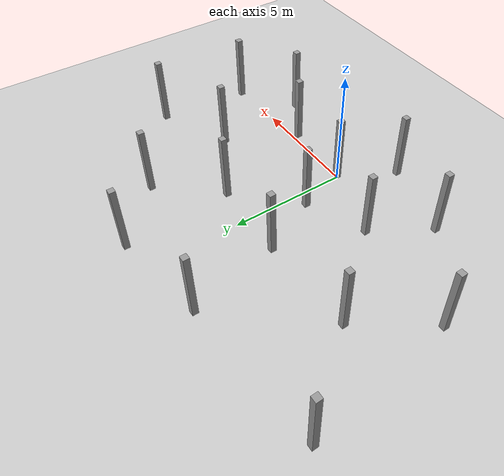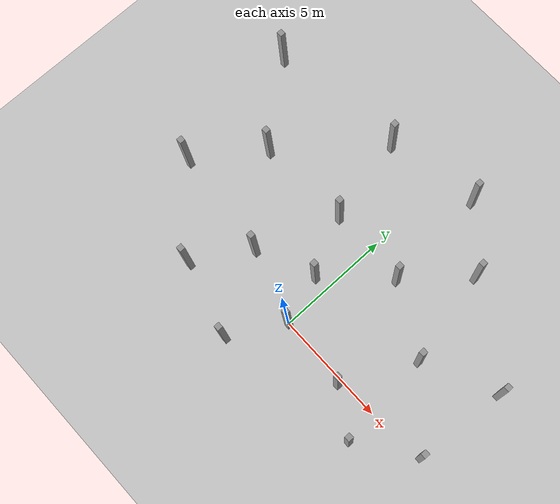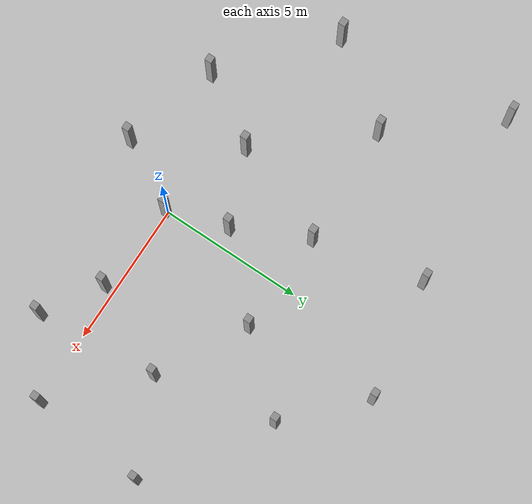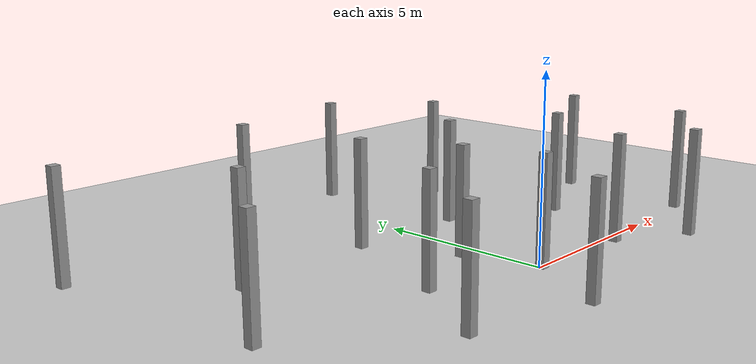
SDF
<sdf version="1.6">
 <world name="default">
  <model name="ground_plane">
   <static>1</static>
   <link name="link">
    <collision name="collision">
     <geometry><plane><normal>0 0 1</normal><size>100 100</size></plane></geometry>
     <surface><friction><ode><mu>100</mu><mu2>50</mu2></ode></friction></surface>
    </collision>
    <visual name="visual">
     <cast_shadows>0</cast_shadows>
     <geometry><plane><normal>0 0 1</normal><size>100 100</size></plane></geometry>
     <material>
      <script><uri>file://media/materials/scripts/gazebo.material</uri><name>Gazebo/Grey</name></script>
     </material>
    </visual>
   </link>
  </model>
  <model name="box_2">
   <link name="link">
    <pose>0 0 1 0 -0 0</pose>
    <inertial>
     <mass>1</mass>
     <inertia><ixx>5.16667</ixx><ixy>0</ixy><ixz>0</ixz><iyy>5.16667</iyy><iyz>0</iyz><izz>5.16667</izz></inertia>
     <pose>0 0 1 0 -0 0</pose>
    </inertial>
    <visual name="ModelPreview_4::link::visual_1">
     <geometry><box><size>0.25 0.25 3</size></box></geometry>
     <material>
      <script><name>Gazebo/Grey</name><uri>file://media/materials/scripts/gazebo.material</uri></script>
      <ambient>0.3 0.3 0.3 1</ambient>
      <diffuse>0.7 0.7 0.7 1</diffuse>
      <specular>0.01 0.01 0.01 1</specular>
      <emissive>0 0 0 1</emissive>
      <shader type="vertex"><normal_map>__default__</normal_map></shader>
     </material>
    </visual>
    <visual name="visual">
     <geometry><box><size>0.25 0.25 3</size></box></geometry>
     <material>
      <script><name>Gazebo/Grey</name><uri>file://media/materials/scripts/gazebo.material</uri></script>
      <ambient>0.3 0.3 0.3 1</ambient>
      <diffuse>0.7 0.7 0.7 1</diffuse>
      <specular>0.01 0.01 0.01 1</specular>
      <emissive>0 0 0 1</emissive>
      <shader type="vertex"><normal_map>__default__</normal_map></shader>
     </material>
    </visual>
    <collision name="collision">
     <geometry><box><size>0.25 0.25 3</size></box></geometry>
     <surface>
      <friction>
       <ode><mu>1</mu><mu2>1</mu2><fdir1>0 0 0</fdir1><slip1>0</slip1><slip2>0</slip2></ode>
       <torsional>
        <coefficient>1</coefficient>
        <patch_radius>0</patch_radius>
        <surface_radius>0</surface_radius>
        <use_patch_radius>1</use_patch_radius>
        <ode><slip>0</slip></ode>
       </torsional>
      </friction>
      <bounce><restitution_coefficient>0</restitution_coefficient><threshold>1e+06</threshold></bounce>
      <contact>
       <collide_without_contact>0</collide_without_contact>
       <collide_without_contact_bitmask>1</collide_without_contact_bitmask>
       <collide_bitmask>1</collide_bitmask>
       <ode>
        <soft_cfm>0</soft_cfm>
        <soft_erp>0.2</soft_erp>
        <kp>1e+13</kp>
        <kd>1</kd>
        <max_vel>0.01</max_vel>
        <min_depth>0</min_depth>
       </ode>
       <bullet>
        <split_impulse>1</split_impulse>
        <split_impulse_penetration_threshold>-0.01</split_impulse_penetration_threshold>
        <soft_cfm>0</soft_cfm>
        <soft_erp>0.2</soft_erp>
        <kp>1e+13</kp>
        <kd>1</kd>
       </bullet>
      </contact>
     </surface>
    </collision>
   </link>
   <static>0</static>
   <pose>0.066026 -0.031786 0.49999 0 -1e-06 -0.000159</pose>
  </model>
  <model name="box_2_5">
   <link name="link">
    <pose>0 0 1 0 -0 0</pose>
    <inertial>
     <mass>1</mass>
     <inertia><ixx>5.16667</ixx><ixy>0</ixy><ixz>0</ixz><iyy>5.16667</iyy><iyz>0</iyz><izz>5.16667</izz></inertia>
     <pose>0 0 1 0 -0 0</pose>
    </inertial>
    <visual name="ModelPreview_4::link::visual_1">
     <geometry><box><size>0.25 0.25 3</size></box></geometry>
     <material>
      <script><name>Gazebo/Grey</name><uri>file://media/materials/scripts/gazebo.material</uri></script>
      <ambient>0.3 0.3 0.3 1</ambient>
      <diffuse>0.7 0.7 0.7 1</diffuse>
      <specular>0.01 0.01 0.01 1</specular>
      <emissive>0 0 0 1</emissive>
      <shader type="vertex"><normal_map>__default__</normal_map></shader>
     </material>
    </visual>
    <visual name="visual">
     <geometry><box><size>0.25 0.25 3</size></box></geometry>
     <material>
      <script><name>Gazebo/Grey</name><uri>file://media/materials/scripts/gazebo.material</uri></script>
      <ambient>0.3 0.3 0.3 1</ambient>
      <diffuse>0.7 0.7 0.7 1</diffuse>
      <specular>0.01 0.01 0.01 1</specular>
      <emissive>0 0 0 1</emissive>
      <shader type="vertex"><normal_map>__default__</normal_map></shader>
     </material>
    </visual>
    <collision name="collision">
     <geometry><box><size>0.25 0.25 3</size></box></geometry>
     <surface>
      <friction>
       <ode><mu>1</mu><mu2>1</mu2><fdir1>0 0 0</fdir1><slip1>0</slip1><slip2>0</slip2></ode>
       <torsional>
        <coefficient>1</coefficient>
        <patch_radius>0</patch_radius>
        <surface_radius>0</surface_radius>
        <use_patch_radius>1</use_patch_radius>
        <ode><slip>0</slip></ode>
       </torsional>
      </friction>
      <bounce><restitution_coefficient>0</restitution_coefficient><threshold>1e+06</threshold></bounce>
      <contact>
       <collide_without_contact>0</collide_without_contact>
       <collide_without_contact_bitmask>1</collide_without_contact_bitmask>
       <collide_bitmask>1</collide_bitmask>
       <ode>
        <soft_cfm>0</soft_cfm>
        <soft_erp>0.2</soft_erp>
        <kp>1e+13</kp>
        <kd>1</kd>
        <max_vel>0.01</max_vel>
        <min_depth>0</min_depth>
       </ode>
       <bullet>
        <split_impulse>1</split_impulse>
        <split_impulse_penetration_threshold>-0.01</split_impulse_penetration_threshold>
        <soft_cfm>0</soft_cfm>
        <soft_erp>0.2</soft_erp>
        <kp>1e+13</kp>
        <kd>1</kd>
       </bullet>
      </contact>
     </surface>
    </collision>
   </link>
   <static>0</static>
   <pose>7.55225 0.161645 0.5 0 0 -9.9e-05</pose>
  </model>
  <model name="box_2_7">
   <link name="link">
    <pose>0 0 1 0 -0 0</pose>
    <inertial>
     <mass>1</mass>
     <inertia><ixx>5.16667</ixx><ixy>0</ixy><ixz>0</ixz><iyy>5.16667</iyy><iyz>0</iyz><izz>5.16667</izz></inertia>
     <pose>0 0 1 0 -0 0</pose>
    </inertial>
    <visual name="ModelPreview_4::link::visual_1">
     <geometry><box><size>0.25 0.25 3</size></box></geometry>
     <material>
      <script><name>Gazebo/Grey</name><uri>file://media/materials/scripts/gazebo.material</uri></script>
      <ambient>0.3 0.3 0.3 1</ambient>
      <diffuse>0.7 0.7 0.7 1</diffuse>
      <specular>0.01 0.01 0.01 1</specular>
      <emissive>0 0 0 1</emissive>
      <shader type="vertex"><normal_map>__default__</normal_map></shader>
     </material>
    </visual>
    <visual name="visual">
     <geometry><box><size>0.25 0.25 3</size></box></geometry>
     <material>
      <script><name>Gazebo/Grey</name><uri>file://media/materials/scripts/gazebo.material</uri></script>
      <ambient>0.3 0.3 0.3 1</ambient>
      <diffuse>0.7 0.7 0.7 1</diffuse>
      <specular>0.01 0.01 0.01 1</specular>
      <emissive>0 0 0 1</emissive>
      <shader type="vertex"><normal_map>__default__</normal_map></shader>
     </material>
    </visual>
    <collision name="collision">
     <geometry><box><size>0.25 0.25 3</size></box></geometry>
     <surface>
      <friction>
       <ode><mu>1</mu><mu2>1</mu2><fdir1>0 0 0</fdir1><slip1>0</slip1><slip2>0</slip2></ode>
       <torsional>
        <coefficient>1</coefficient>
        <patch_radius>0</patch_radius>
        <surface_radius>0</surface_radius>
        <use_patch_radius>1</use_patch_radius>
        <ode><slip>0</slip></ode>
       </torsional>
      </friction>
      <bounce><restitution_coefficient>0</restitution_coefficient><threshold>1e+06</threshold></bounce>
      <contact>
       <collide_without_contact>0</collide_without_contact>
       <collide_without_contact_bitmask>1</collide_without_contact_bitmask>
       <collide_bitmask>1</collide_bitmask>
       <ode>
        <soft_cfm>0</soft_cfm>
        <soft_erp>0.2</soft_erp>
        <kp>1e+13</kp>
        <kd>1</kd>
        <max_vel>0.01</max_vel>
        <min_depth>0</min_depth>
       </ode>
       <bullet>
        <split_impulse>1</split_impulse>
        <split_impulse_penetration_threshold>-0.01</split_impulse_penetration_threshold>
        <soft_cfm>0</soft_cfm>
        <soft_erp>0.2</soft_erp>
        <kp>1e+13</kp>
        <kd>1</kd>
       </bullet>
      </contact>
     </surface>
    </collision>
   </link>
   <static>0</static>
   <pose>-1.22637 -2.30478 0.500002 -1.7e-05 1e-06 -0.000177</pose>
  </model>
  <model name="box_2_12">
   <link name="link">
    <pose>0 0 1 0 -0 0</pose>
    <inertial>
     <mass>1</mass>
     <inertia><ixx>5.16667</ixx><ixy>0</ixy><ixz>0</ixz><iyy>5.16667</iyy><iyz>0</iyz><izz>5.16667</izz></inertia>
     <pose>0 0 1 0 -0 0</pose>
    </inertial>
    <visual name="ModelPreview_4::link::visual_1">
     <geometry><box><size>0.25 0.25 3</size></box></geometry>
     <material>
      <script><name>Gazebo/Grey</name><uri>file://media/materials/scripts/gazebo.material</uri></script>
      <ambient>0.3 0.3 0.3 1</ambient>
      <diffuse>0.7 0.7 0.7 1</diffuse>
      <specular>0.01 0.01 0.01 1</specular>
      <emissive>0 0 0 1</emissive>
      <shader type="vertex"><normal_map>__default__</normal_map></shader>
     </material>
    </visual>
    <visual name="visual">
     <geometry><box><size>0.25 0.25 3</size></box></geometry>
     <material>
      <script><name>Gazebo/Grey</name><uri>file://media/materials/scripts/gazebo.material</uri></script>
      <ambient>0.3 0.3 0.3 1</ambient>
      <diffuse>0.7 0.7 0.7 1</diffuse>
      <specular>0.01 0.01 0.01 1</specular>
      <emissive>0 0 0 1</emissive>
      <shader type="vertex"><normal_map>__default__</normal_map></shader>
     </material>
    </visual>
    <collision name="collision">
     <geometry><box><size>0.25 0.25 3</size></box></geometry>
     <surface>
      <friction>
       <ode><mu>1</mu><mu2>1</mu2><fdir1>0 0 0</fdir1><slip1>0</slip1><slip2>0</slip2></ode>
       <torsional>
        <coefficient>1</coefficient>
        <patch_radius>0</patch_radius>
        <surface_radius>0</surface_radius>
        <use_patch_radius>1</use_patch_radius>
        <ode><slip>0</slip></ode>
       </torsional>
      </friction>
      <bounce><restitution_coefficient>0</restitution_coefficient><threshold>1e+06</threshold></bounce>
      <contact>
       <collide_without_contact>0</collide_without_contact>
       <collide_without_contact_bitmask>1</collide_without_contact_bitmask>
       <collide_bitmask>1</collide_bitmask>
       <ode>
        <soft_cfm>0</soft_cfm>
        <soft_erp>0.2</soft_erp>
        <kp>1e+13</kp>
        <kd>1</kd>
        <max_vel>0.01</max_vel>
        <min_depth>0</min_depth>
       </ode>
       <bullet>
        <split_impulse>1</split_impulse>
        <split_impulse_penetration_threshold>-0.01</split_impulse_penetration_threshold>
        <soft_cfm>0</soft_cfm>
        <soft_erp>0.2</soft_erp>
        <kp>1e+13</kp>
        <kd>1</kd>
       </bullet>
      </contact>
     </surface>
    </collision>
   </link>
   <static>0</static>
   <pose>-4.56221 -1.34442 0.500001 -1e-06 -5e-06 -0.000141</pose>
  </model>
  <model name="box_2_14">
   <link name="link">
    <pose>0 0 1 0 -0 0</pose>
    <inertial>
     <mass>1</mass>
     <inertia><ixx>5.16667</ixx><ixy>0</ixy><ixz>0</ixz><iyy>5.16667</iyy><iyz>0</iyz><izz>5.16667</izz></inertia>
     <pose>0 0 1 0 -0 0</pose>
    </inertial>
    <visual name="ModelPreview_4::link::visual_1">
     <geometry><box><size>0.25 0.25 3</size></box></geometry>
     <material>
      <script><name>Gazebo/Grey</name><uri>file://media/materials/scripts/gazebo.material</uri></script>
      <ambient>0.3 0.3 0.3 1</ambient>
      <diffuse>0.7 0.7 0.7 1</diffuse>
      <specular>0.01 0.01 0.01 1</specular>
      <emissive>0 0 0 1</emissive>
      <shader type="vertex"><normal_map>__default__</normal_map></shader>
     </material>
    </visual>
    <visual name="visual">
     <geometry><box><size>0.25 0.25 3</size></box></geometry>
     <material>
      <script><name>Gazebo/Grey</name><uri>file://media/materials/scripts/gazebo.material</uri></script>
      <ambient>0.3 0.3 0.3 1</ambient>
      <diffuse>0.7 0.7 0.7 1</diffuse>
      <specular>0.01 0.01 0.01 1</specular>
      <emissive>0 0 0 1</emissive>
      <shader type="vertex"><normal_map>__default__</normal_map></shader>
     </material>
    </visual>
    <collision name="collision">
     <geometry><box><size>0.25 0.25 3</size></box></geometry>
     <surface>
      <friction>
       <ode><mu>1</mu><mu2>1</mu2><fdir1>0 0 0</fdir1><slip1>0</slip1><slip2>0</slip2></ode>
       <torsional>
        <coefficient>1</coefficient>
        <patch_radius>0</patch_radius>
        <surface_radius>0</surface_radius>
        <use_patch_radius>1</use_patch_radius>
        <ode><slip>0</slip></ode>
       </torsional>
      </friction>
      <bounce><restitution_coefficient>0</restitution_coefficient><threshold>1e+06</threshold></bounce>
      <contact>
       <collide_without_contact>0</collide_without_contact>
       <collide_without_contact_bitmask>1</collide_without_contact_bitmask>
       <collide_bitmask>1</collide_bitmask>
       <ode>
        <soft_cfm>0</soft_cfm>
        <soft_erp>0.2</soft_erp>
        <kp>1e+13</kp>
        <kd>1</kd>
        <max_vel>0.01</max_vel>
        <min_depth>0</min_depth>
       </ode>
       <bullet>
        <split_impulse>1</split_impulse>
        <split_impulse_penetration_threshold>-0.01</split_impulse_penetration_threshold>
        <soft_cfm>0</soft_cfm>
        <soft_erp>0.2</soft_erp>
        <kp>1e+13</kp>
        <kd>1</kd>
       </bullet>
      </contact>
     </surface>
    </collision>
   </link>
   <static>0</static>
   <pose>3.24903 -0.257913 0.5 1e-06 0 -0.000165</pose>
  </model>
  <model name="box_2_15">
   <link name="link">
    <pose>0 0 1 0 -0 0</pose>
    <inertial>
     <mass>1</mass>
     <inertia><ixx>5.16667</ixx><ixy>0</ixy><ixz>0</ixz><iyy>5.16667</iyy><iyz>0</iyz><izz>5.16667</izz></inertia>
     <pose>0 0 1 0 -0 0</pose>
    </inertial>
    <visual name="ModelPreview_4::link::visual_1">
     <geometry><box><size>0.25 0.25 3</size></box></geometry>
     <material>
      <script><name>Gazebo/Grey</name><uri>file://media/materials/scripts/gazebo.material</uri></script>
      <ambient>0.3 0.3 0.3 1</ambient>
      <diffuse>0.7 0.7 0.7 1</diffuse>
      <specular>0.01 0.01 0.01 1</specular>
      <emissive>0 0 0 1</emissive>
      <shader type="vertex"><normal_map>__default__</normal_map></shader>
     </material>
    </visual>
    <visual name="visual">
     <geometry><box><size>0.25 0.25 3</size></box></geometry>
     <material>
      <script><name>Gazebo/Grey</name><uri>file://media/materials/scripts/gazebo.material</uri></script>
      <ambient>0.3 0.3 0.3 1</ambient>
      <diffuse>0.7 0.7 0.7 1</diffuse>
      <specular>0.01 0.01 0.01 1</specular>
      <emissive>0 0 0 1</emissive>
      <shader type="vertex"><normal_map>__default__</normal_map></shader>
     </material>
    </visual>
    <collision name="collision">
     <geometry><box><size>0.25 0.25 3</size></box></geometry>
     <surface>
      <friction>
       <ode><mu>1</mu><mu2>1</mu2><fdir1>0 0 0</fdir1><slip1>0</slip1><slip2>0</slip2></ode>
       <torsional>
        <coefficient>1</coefficient>
        <patch_radius>0</patch_radius>
        <surface_radius>0</surface_radius>
        <use_patch_radius>1</use_patch_radius>
        <ode><slip>0</slip></ode>
       </torsional>
      </friction>
      <bounce><restitution_coefficient>0</restitution_coefficient><threshold>1e+06</threshold></bounce>
      <contact>
       <collide_without_contact>0</collide_without_contact>
       <collide_without_contact_bitmask>1</collide_without_contact_bitmask>
       <collide_bitmask>1</collide_bitmask>
       <ode>
        <soft_cfm>0</soft_cfm>
        <soft_erp>0.2</soft_erp>
        <kp>1e+13</kp>
        <kd>1</kd>
        <max_vel>0.01</max_vel>
        <min_depth>0</min_depth>
       </ode>
       <bullet>
        <split_impulse>1</split_impulse>
        <split_impulse_penetration_threshold>-0.01</split_impulse_penetration_threshold>
        <soft_cfm>0</soft_cfm>
        <soft_erp>0.2</soft_erp>
        <kp>1e+13</kp>
        <kd>1</kd>
       </bullet>
      </contact>
     </surface>
    </collision>
   </link>
   <static>0</static>
   <pose>1.7506 4.41033 0.5 0 0 -0.000111</pose>
  </model>
  <model name="box_2_18">
   <link name="link">
    <pose>0 0 1 0 -0 0</pose>
    <inertial>
     <mass>1</mass>
     <inertia><ixx>5.16667</ixx><ixy>0</ixy><ixz>0</ixz><iyy>5.16667</iyy><iyz>0</iyz><izz>5.16667</izz></inertia>
     <pose>0 0 1 0 -0 0</pose>
    </inertial>
    <visual name="ModelPreview_4::link::visual_1">
     <geometry><box><size>0.25 0.25 3</size></box></geometry>
     <material>
      <script><name>Gazebo/Grey</name><uri>file://media/materials/scripts/gazebo.material</uri></script>
      <ambient>0.3 0.3 0.3 1</ambient>
      <diffuse>0.7 0.7 0.7 1</diffuse>
      <specular>0.01 0.01 0.01 1</specular>
      <emissive>0 0 0 1</emissive>
      <shader type="vertex"><normal_map>__default__</normal_map></shader>
     </material>
    </visual>
    <visual name="visual">
     <geometry><box><size>0.25 0.25 3</size></box></geometry>
     <material>
      <script><name>Gazebo/Grey</name><uri>file://media/materials/scripts/gazebo.material</uri></script>
      <ambient>0.3 0.3 0.3 1</ambient>
      <diffuse>0.7 0.7 0.7 1</diffuse>
      <specular>0.01 0.01 0.01 1</specular>
      <emissive>0 0 0 1</emissive>
      <shader type="vertex"><normal_map>__default__</normal_map></shader>
     </material>
    </visual>
    <collision name="collision">
     <geometry><box><size>0.25 0.25 3</size></box></geometry>
     <surface>
      <friction>
       <ode><mu>1</mu><mu2>1</mu2><fdir1>0 0 0</fdir1><slip1>0</slip1><slip2>0</slip2></ode>
       <torsional>
        <coefficient>1</coefficient>
        <patch_radius>0</patch_radius>
        <surface_radius>0</surface_radius>
        <use_patch_radius>1</use_patch_radius>
        <ode><slip>0</slip></ode>
       </torsional>
      </friction>
      <bounce><restitution_coefficient>0</restitution_coefficient><threshold>1e+06</threshold></bounce>
      <contact>
       <collide_without_contact>0</collide_without_contact>
       <collide_without_contact_bitmask>1</collide_without_contact_bitmask>
       <collide_bitmask>1</collide_bitmask>
       <ode>
        <soft_cfm>0</soft_cfm>
        <soft_erp>0.2</soft_erp>
        <kp>1e+13</kp>
        <kd>1</kd>
        <max_vel>0.01</max_vel>
        <min_depth>0</min_depth>
       </ode>
       <bullet>
        <split_impulse>1</split_impulse>
        <split_impulse_penetration_threshold>-0.01</split_impulse_penetration_threshold>
        <soft_cfm>0</soft_cfm>
        <soft_erp>0.2</soft_erp>
        <kp>1e+13</kp>
        <kd>1</kd>
       </bullet>
      </contact>
     </surface>
    </collision>
   </link>
   <static>0</static>
   <pose>7.90997 4.14944 0.500001 6e-06 -0 -0.00012</pose>
  </model>
  <model name="box_2_19">
   <link name="link">
    <pose>0 0 1 0 -0 0</pose>
    <inertial>
     <mass>1</mass>
     <inertia><ixx>5.16667</ixx><ixy>0</ixy><ixz>0</ixz><iyy>5.16667</iyy><iyz>0</iyz><izz>5.16667</izz></inertia>
     <pose>0 0 1 0 -0 0</pose>
    </inertial>
    <visual name="ModelPreview_4::link::visual_1">
     <geometry><box><size>0.25 0.25 3</size></box></geometry>
     <material>
      <script><name>Gazebo/Grey</name><uri>file://media/materials/scripts/gazebo.material</uri></script>
      <ambient>0.3 0.3 0.3 1</ambient>
      <diffuse>0.7 0.7 0.7 1</diffuse>
      <specular>0.01 0.01 0.01 1</specular>
      <emissive>0 0 0 1</emissive>
      <shader type="vertex"><normal_map>__default__</normal_map></shader>
     </material>
    </visual>
    <visual name="visual">
     <geometry><box><size>0.25 0.25 3</size></box></geometry>
     <material>
      <script><name>Gazebo/Grey</name><uri>file://media/materials/scripts/gazebo.material</uri></script>
      <ambient>0.3 0.3 0.3 1</ambient>
      <diffuse>0.7 0.7 0.7 1</diffuse>
      <specular>0.01 0.01 0.01 1</specular>
      <emissive>0 0 0 1</emissive>
      <shader type="vertex"><normal_map>__default__</normal_map></shader>
     </material>
    </visual>
    <collision name="collision">
     <geometry><box><size>0.25 0.25 3</size></box></geometry>
     <surface>
      <friction>
       <ode><mu>1</mu><mu2>1</mu2><fdir1>0 0 0</fdir1><slip1>0</slip1><slip2>0</slip2></ode>
       <torsional>
        <coefficient>1</coefficient>
        <patch_radius>0</patch_radius>
        <surface_radius>0</surface_radius>
        <use_patch_radius>1</use_patch_radius>
        <ode><slip>0</slip></ode>
       </torsional>
      </friction>
      <bounce><restitution_coefficient>0</restitution_coefficient><threshold>1e+06</threshold></bounce>
      <contact>
       <collide_without_contact>0</collide_without_contact>
       <collide_without_contact_bitmask>1</collide_without_contact_bitmask>
       <collide_bitmask>1</collide_bitmask>
       <ode>
        <soft_cfm>0</soft_cfm>
        <soft_erp>0.2</soft_erp>
        <kp>1e+13</kp>
        <kd>1</kd>
        <max_vel>0.01</max_vel>
        <min_depth>0</min_depth>
       </ode>
       <bullet>
        <split_impulse>1</split_impulse>
        <split_impulse_penetration_threshold>-0.01</split_impulse_penetration_threshold>
        <soft_cfm>0</soft_cfm>
        <soft_erp>0.2</soft_erp>
        <kp>1e+13</kp>
        <kd>1</kd>
       </bullet>
      </contact>
     </surface>
    </collision>
   </link>
   <static>0</static>
   <pose>1.46233 9.06627 0.5 0 0 -0.000208</pose>
  </model>
  <model name="box_2_20">
   <link name="link">
    <pose>0 0 1 0 -0 0</pose>
    <inertial>
     <mass>1</mass>
     <inertia><ixx>5.16667</ixx><ixy>0</ixy><ixz>0</ixz><iyy>5.16667</iyy><iyz>0</iyz><izz>5.16667</izz></inertia>
     <pose>0 0 1 0 -0 0</pose>
    </inertial>
    <visual name="ModelPreview_4::link::visual_1">
     <geometry><box><size>0.25 0.25 3</size></box></geometry>
     <material>
      <script><name>Gazebo/Grey</name><uri>file://media/materials/scripts/gazebo.material</uri></script>
      <ambient>0.3 0.3 0.3 1</ambient>
      <diffuse>0.7 0.7 0.7 1</diffuse>
      <specular>0.01 0.01 0.01 1</specular>
      <emissive>0 0 0 1</emissive>
      <shader type="vertex"><normal_map>__default__</normal_map></shader>
     </material>
    </visual>
    <visual name="visual">
     <geometry><box><size>0.25 0.25 3</size></box></geometry>
     <material>
      <script><name>Gazebo/Grey</name><uri>file://media/materials/scripts/gazebo.material</uri></script>
      <ambient>0.3 0.3 0.3 1</ambient>
      <diffuse>0.7 0.7 0.7 1</diffuse>
      <specular>0.01 0.01 0.01 1</specular>
      <emissive>0 0 0 1</emissive>
      <shader type="vertex"><normal_map>__default__</normal_map></shader>
     </material>
    </visual>
    <collision name="collision">
     <geometry><box><size>0.25 0.25 3</size></box></geometry>
     <surface>
      <friction>
       <ode><mu>1</mu><mu2>1</mu2><fdir1>0 0 0</fdir1><slip1>0</slip1><slip2>0</slip2></ode>
       <torsional>
        <coefficient>1</coefficient>
        <patch_radius>0</patch_radius>
        <surface_radius>0</surface_radius>
        <use_patch_radius>1</use_patch_radius>
        <ode><slip>0</slip></ode>
       </torsional>
      </friction>
      <bounce><restitution_coefficient>0</restitution_coefficient><threshold>1e+06</threshold></bounce>
      <contact>
       <collide_without_contact>0</collide_without_contact>
       <collide_without_contact_bitmask>1</collide_without_contact_bitmask>
       <collide_bitmask>1</collide_bitmask>
       <ode>
        <soft_cfm>0</soft_cfm>
        <soft_erp>0.2</soft_erp>
        <kp>1e+13</kp>
        <kd>1</kd>
        <max_vel>0.01</max_vel>
        <min_depth>0</min_depth>
       </ode>
       <bullet>
        <split_impulse>1</split_impulse>
        <split_impulse_penetration_threshold>-0.01</split_impulse_penetration_threshold>
        <soft_cfm>0</soft_cfm>
        <soft_erp>0.2</soft_erp>
        <kp>1e+13</kp>
        <kd>1</kd>
       </bullet>
      </contact>
     </surface>
    </collision>
   </link>
   <static>0</static>
   <pose>5.19256 -1.47892 0.5 -1e-06 2e-06 -0.000171</pose>
  </model>
  <model name="box_2_21">
   <link name="link">
    <pose>0 0 1 0 -0 0</pose>
    <inertial>
     <mass>1</mass>
     <inertia><ixx>5.16667</ixx><ixy>0</ixy><ixz>0</ixz><iyy>5.16667</iyy><iyz>0</iyz><izz>5.16667</izz></inertia>
     <pose>0 0 1 0 -0 0</pose>
    </inertial>
    <visual name="ModelPreview_4::link::visual_1">
     <geometry><box><size>0.25 0.25 3</size></box></geometry>
     <material>
      <script><name>Gazebo/Grey</name><uri>file://media/materials/scripts/gazebo.material</uri></script>
      <ambient>0.3 0.3 0.3 1</ambient>
      <diffuse>0.7 0.7 0.7 1</diffuse>
      <specular>0.01 0.01 0.01 1</specular>
      <emissive>0 0 0 1</emissive>
      <shader type="vertex"><normal_map>__default__</normal_map></shader>
     </material>
    </visual>
    <visual name="visual">
     <geometry><box><size>0.25 0.25 3</size></box></geometry>
     <material>
      <script><name>Gazebo/Grey</name><uri>file://media/materials/scripts/gazebo.material</uri></script>
      <ambient>0.3 0.3 0.3 1</ambient>
      <diffuse>0.7 0.7 0.7 1</diffuse>
      <specular>0.01 0.01 0.01 1</specular>
      <emissive>0 0 0 1</emissive>
      <shader type="vertex"><normal_map>__default__</normal_map></shader>
     </material>
    </visual>
    <collision name="collision">
     <geometry><box><size>0.25 0.25 3</size></box></geometry>
     <surface>
      <friction>
       <ode><mu>1</mu><mu2>1</mu2><fdir1>0 0 0</fdir1><slip1>0</slip1><slip2>0</slip2></ode>
       <torsional>
        <coefficient>1</coefficient>
        <patch_radius>0</patch_radius>
        <surface_radius>0</surface_radius>
        <use_patch_radius>1</use_patch_radius>
        <ode><slip>0</slip></ode>
       </torsional>
      </friction>
      <bounce><restitution_coefficient>0</restitution_coefficient><threshold>1e+06</threshold></bounce>
      <contact>
       <collide_without_contact>0</collide_without_contact>
       <collide_without_contact_bitmask>1</collide_without_contact_bitmask>
       <collide_bitmask>1</collide_bitmask>
       <ode>
        <soft_cfm>0</soft_cfm>
        <soft_erp>0.2</soft_erp>
        <kp>1e+13</kp>
        <kd>1</kd>
        <max_vel>0.01</max_vel>
        <min_depth>0</min_depth>
       </ode>
       <bullet>
        <split_impulse>1</split_impulse>
        <split_impulse_penetration_threshold>-0.01</split_impulse_penetration_threshold>
        <soft_cfm>0</soft_cfm>
        <soft_erp>0.2</soft_erp>
        <kp>1e+13</kp>
        <kd>1</kd>
       </bullet>
      </contact>
     </surface>
    </collision>
   </link>
   <static>0</static>
   <pose>4.78721 2.7372 0.5 0 -1e-06 -0.000142</pose>
  </model>
  <model name="box_2_23">
   <link name="link">
    <pose>0 0 1 0 -0 0</pose>
    <inertial>
     <mass>1</mass>
     <inertia><ixx>5.16667</ixx><ixy>0</ixy><ixz>0</ixz><iyy>5.16667</iyy><iyz>0</iyz><izz>5.16667</izz></inertia>
     <pose>0 0 1 0 -0 0</pose>
    </inertial>
    <visual name="ModelPreview_4::link::visual_1">
     <geometry><box><size>0.25 0.25 3</size></box></geometry>
     <material>
      <script><name>Gazebo/Grey</name><uri>file://media/materials/scripts/gazebo.material</uri></script>
      <ambient>0.3 0.3 0.3 1</ambient>
      <diffuse>0.7 0.7 0.7 1</diffuse>
      <specular>0.01 0.01 0.01 1</specular>
      <emissive>0 0 0 1</emissive>
      <shader type="vertex"><normal_map>__default__</normal_map></shader>
     </material>
    </visual>
    <visual name="visual">
     <geometry><box><size>0.25 0.25 3</size></box></geometry>
     <material>
      <script><name>Gazebo/Grey</name><uri>file://media/materials/scripts/gazebo.material</uri></script>
      <ambient>0.3 0.3 0.3 1</ambient>
      <diffuse>0.7 0.7 0.7 1</diffuse>
      <specular>0.01 0.01 0.01 1</specular>
      <emissive>0 0 0 1</emissive>
      <shader type="vertex"><normal_map>__default__</normal_map></shader>
     </material>
    </visual>
    <collision name="collision">
     <geometry><box><size>0.25 0.25 3</size></box></geometry>
     <surface>
      <friction>
       <ode><mu>1</mu><mu2>1</mu2><fdir1>0 0 0</fdir1><slip1>0</slip1><slip2>0</slip2></ode>
       <torsional>
        <coefficient>1</coefficient>
        <patch_radius>0</patch_radius>
        <surface_radius>0</surface_radius>
        <use_patch_radius>1</use_patch_radius>
        <ode><slip>0</slip></ode>
       </torsional>
      </friction>
      <bounce><restitution_coefficient>0</restitution_coefficient><threshold>1e+06</threshold></bounce>
      <contact>
       <collide_without_contact>0</collide_without_contact>
       <collide_without_contact_bitmask>1</collide_without_contact_bitmask>
       <collide_bitmask>1</collide_bitmask>
       <ode>
        <soft_cfm>0</soft_cfm>
        <soft_erp>0.2</soft_erp>
        <kp>1e+13</kp>
        <kd>1</kd>
        <max_vel>0.01</max_vel>
        <min_depth>0</min_depth>
       </ode>
       <bullet>
        <split_impulse>1</split_impulse>
        <split_impulse_penetration_threshold>-0.01</split_impulse_penetration_threshold>
        <soft_cfm>0</soft_cfm>
        <soft_erp>0.2</soft_erp>
        <kp>1e+13</kp>
        <kd>1</kd>
       </bullet>
      </contact>
     </surface>
    </collision>
   </link>
   <static>0</static>
   <pose>-1.80286 4.52417 0.500001 0 -4e-06 -0.000116</pose>
  </model>
  <model name="box_2_24">
   <link name="link">
    <pose>0 0 1 0 -0 0</pose>
    <inertial>
     <mass>1</mass>
     <inertia><ixx>5.16667</ixx><ixy>0</ixy><ixz>0</ixz><iyy>5.16667</iyy><iyz>0</iyz><izz>5.16667</izz></inertia>
     <pose>0 0 1 0 -0 0</pose>
    </inertial>
    <visual name="ModelPreview_4::link::visual_1">
     <geometry><box><size>0.25 0.25 3</size></box></geometry>
     <material>
      <script><name>Gazebo/Grey</name><uri>file://media/materials/scripts/gazebo.material</uri></script>
      <ambient>0.3 0.3 0.3 1</ambient>
      <diffuse>0.7 0.7 0.7 1</diffuse>
      <specular>0.01 0.01 0.01 1</specular>
      <emissive>0 0 0 1</emissive>
      <shader type="vertex"><normal_map>__default__</normal_map></shader>
     </material>
    </visual>
    <visual name="visual">
     <geometry><box><size>0.25 0.25 3</size></box></geometry>
     <material>
      <script><name>Gazebo/Grey</name><uri>file://media/materials/scripts/gazebo.material</uri></script>
      <ambient>0.3 0.3 0.3 1</ambient>
      <diffuse>0.7 0.7 0.7 1</diffuse>
      <specular>0.01 0.01 0.01 1</specular>
      <emissive>0 0 0 1</emissive>
      <shader type="vertex"><normal_map>__default__</normal_map></shader>
     </material>
    </visual>
    <collision name="collision">
     <geometry><box><size>0.25 0.25 3</size></box></geometry>
     <surface>
      <friction>
       <ode><mu>1</mu><mu2>1</mu2><fdir1>0 0 0</fdir1><slip1>0</slip1><slip2>0</slip2></ode>
       <torsional>
        <coefficient>1</coefficient>
        <patch_radius>0</patch_radius>
        <surface_radius>0</surface_radius>
        <use_patch_radius>1</use_patch_radius>
        <ode><slip>0</slip></ode>
       </torsional>
      </friction>
      <bounce><restitution_coefficient>0</restitution_coefficient><threshold>1e+06</threshold></bounce>
      <contact>
       <collide_without_contact>0</collide_without_contact>
       <collide_without_contact_bitmask>1</collide_without_contact_bitmask>
       <collide_bitmask>1</collide_bitmask>
       <ode>
        <soft_cfm>0</soft_cfm>
        <soft_erp>0.2</soft_erp>
        <kp>1e+13</kp>
        <kd>1</kd>
        <max_vel>0.01</max_vel>
        <min_depth>0</min_depth>
       </ode>
       <bullet>
        <split_impulse>1</split_impulse>
        <split_impulse_penetration_threshold>-0.01</split_impulse_penetration_threshold>
        <soft_cfm>0</soft_cfm>
        <soft_erp>0.2</soft_erp>
        <kp>1e+13</kp>
        <kd>1</kd>
       </bullet>
      </contact>
     </surface>
    </collision>
   </link>
   <static>0</static>
   <pose>-3.11206 1.01082 0.500001 -9e-06 -0 -0.000157</pose>
  </model>
  <model name="box_2_27">
   <link name="link">
    <pose>0 0 1 0 -0 0</pose>
    <inertial>
     <mass>1</mass>
     <inertia><ixx>5.16667</ixx><ixy>0</ixy><ixz>0</ixz><iyy>5.16667</iyy><iyz>0</iyz><izz>5.16667</izz></inertia>
     <pose>0 0 1 0 -0 0</pose>
    </inertial>
    <visual name="ModelPreview_4::link::visual_1">
     <geometry><box><size>0.25 0.25 3</size></box></geometry>
     <material>
      <script><name>Gazebo/Grey</name><uri>file://media/materials/scripts/gazebo.material</uri></script>
      <ambient>0.3 0.3 0.3 1</ambient>
      <diffuse>0.7 0.7 0.7 1</diffuse>
      <specular>0.01 0.01 0.01 1</specular>
      <emissive>0 0 0 1</emissive>
      <shader type="vertex"><normal_map>__default__</normal_map></shader>
     </material>
    </visual>
    <visual name="visual">
     <geometry><box><size>0.25 0.25 3</size></box></geometry>
     <material>
      <script><name>Gazebo/Grey</name><uri>file://media/materials/scripts/gazebo.material</uri></script>
      <ambient>0.3 0.3 0.3 1</ambient>
      <diffuse>0.7 0.7 0.7 1</diffuse>
      <specular>0.01 0.01 0.01 1</specular>
      <emissive>0 0 0 1</emissive>
      <shader type="vertex"><normal_map>__default__</normal_map></shader>
     </material>
    </visual>
    <collision name="collision">
     <geometry><box><size>0.25 0.25 3</size></box></geometry>
     <surface>
      <friction>
       <ode><mu>1</mu><mu2>1</mu2><fdir1>0 0 0</fdir1><slip1>0</slip1><slip2>0</slip2></ode>
       <torsional>
        <coefficient>1</coefficient>
        <patch_radius>0</patch_radius>
        <surface_radius>0</surface_radius>
        <use_patch_radius>1</use_patch_radius>
        <ode><slip>0</slip></ode>
       </torsional>
      </friction>
      <bounce><restitution_coefficient>0</restitution_coefficient><threshold>1e+06</threshold></bounce>
      <contact>
       <collide_without_contact>0</collide_without_contact>
       <collide_without_contact_bitmask>1</collide_without_contact_bitmask>
       <collide_bitmask>1</collide_bitmask>
       <ode>
        <soft_cfm>0</soft_cfm>
        <soft_erp>0.2</soft_erp>
        <kp>1e+13</kp>
        <kd>1</kd>
        <max_vel>0.01</max_vel>
        <min_depth>0</min_depth>
       </ode>
       <bullet>
        <split_impulse>1</split_impulse>
        <split_impulse_penetration_threshold>-0.01</split_impulse_penetration_threshold>
        <soft_cfm>0</soft_cfm>
        <soft_erp>0.2</soft_erp>
        <kp>1e+13</kp>
        <kd>1</kd>
       </bullet>
      </contact>
     </surface>
    </collision>
   </link>
   <static>0</static>
   <pose>-5.97573 4.36032 0.500002 -4e-06 -1.3e-05 -0.000128</pose>
  </model>
  <model name="box_2_28">
   <link name="link">
    <pose>0 0 1 0 -0 0</pose>
    <inertial>
     <mass>1</mass>
     <inertia><ixx>5.16667</ixx><ixy>0</ixy><ixz>0</ixz><iyy>5.16667</iyy><iyz>0</iyz><izz>5.16667</izz></inertia>
     <pose>0 0 1 0 -0 0</pose>
    </inertial>
    <visual name="ModelPreview_4::link::visual_1">
     <geometry><box><size>0.25 0.25 3</size></box></geometry>
     <material>
      <script><name>Gazebo/Grey</name><uri>file://media/materials/scripts/gazebo.material</uri></script>
      <ambient>0.3 0.3 0.3 1</ambient>
      <diffuse>0.7 0.7 0.7 1</diffuse>
      <specular>0.01 0.01 0.01 1</specular>
      <emissive>0 0 0 1</emissive>
      <shader type="vertex"><normal_map>__default__</normal_map></shader>
     </material>
    </visual>
    <visual name="visual">
     <geometry><box><size>0.25 0.25 3</size></box></geometry>
     <material>
      <script><name>Gazebo/Grey</name><uri>file://media/materials/scripts/gazebo.material</uri></script>
      <ambient>0.3 0.3 0.3 1</ambient>
      <diffuse>0.7 0.7 0.7 1</diffuse>
      <specular>0.01 0.01 0.01 1</specular>
      <emissive>0 0 0 1</emissive>
      <shader type="vertex"><normal_map>__default__</normal_map></shader>
     </material>
    </visual>
    <collision name="collision">
     <geometry><box><size>0.25 0.25 3</size></box></geometry>
     <surface>
      <friction>
       <ode><mu>1</mu><mu2>1</mu2><fdir1>0 0 0</fdir1><slip1>0</slip1><slip2>0</slip2></ode>
       <torsional>
        <coefficient>1</coefficient>
        <patch_radius>0</patch_radius>
        <surface_radius>0</surface_radius>
        <use_patch_radius>1</use_patch_radius>
        <ode><slip>0</slip></ode>
       </torsional>
      </friction>
      <bounce><restitution_coefficient>0</restitution_coefficient><threshold>1e+06</threshold></bounce>
      <contact>
       <collide_without_contact>0</collide_without_contact>
       <collide_without_contact_bitmask>1</collide_without_contact_bitmask>
       <collide_bitmask>1</collide_bitmask>
       <ode>
        <soft_cfm>0</soft_cfm>
        <soft_erp>0.2</soft_erp>
        <kp>1e+13</kp>
        <kd>1</kd>
        <max_vel>0.01</max_vel>
        <min_depth>0</min_depth>
       </ode>
       <bullet>
        <split_impulse>1</split_impulse>
        <split_impulse_penetration_threshold>-0.01</split_impulse_penetration_threshold>
        <soft_cfm>0</soft_cfm>
        <soft_erp>0.2</soft_erp>
        <kp>1e+13</kp>
        <kd>1</kd>
       </bullet>
      </contact>
     </surface>
    </collision>
   </link>
   <static>0</static>
   <pose>-7.97321 1.56919 0.500006 -1e-06 -4.8e-05 -0.000152</pose>
  </model>
  <model name="box_2_29">
   <link name="link">
    <pose>0 0 1 0 -0 0</pose>
    <inertial>
     <mass>1</mass>
     <inertia><ixx>5.16667</ixx><ixy>0</ixy><ixz>0</ixz><iyy>5.16667</iyy><iyz>0</iyz><izz>5.16667</izz></inertia>
     <pose>0 0 1 0 -0 0</pose>
    </inertial>
    <visual name="ModelPreview_4::link::visual_1">
     <geometry><box><size>0.25 0.25 3</size></box></geometry>
     <material>
      <script><name>Gazebo/Grey</name><uri>file://media/materials/scripts/gazebo.material</uri></script>
      <ambient>0.3 0.3 0.3 1</ambient>
      <diffuse>0.7 0.7 0.7 1</diffuse>
      <specular>0.01 0.01 0.01 1</specular>
      <emissive>0 0 0 1</emissive>
      <shader type="vertex"><normal_map>__default__</normal_map></shader>
     </material>
    </visual>
    <visual name="visual">
     <geometry><box><size>0.25 0.25 3</size></box></geometry>
     <material>
      <script><name>Gazebo/Grey</name><uri>file://media/materials/scripts/gazebo.material</uri></script>
      <ambient>0.3 0.3 0.3 1</ambient>
      <diffuse>0.7 0.7 0.7 1</diffuse>
      <specular>0.01 0.01 0.01 1</specular>
      <emissive>0 0 0 1</emissive>
      <shader type="vertex"><normal_map>__default__</normal_map></shader>
     </material>
    </visual>
    <collision name="collision">
     <geometry><box><size>0.25 0.25 3</size></box></geometry>
     <surface>
      <friction>
       <ode><mu>1</mu><mu2>1</mu2><fdir1>0 0 0</fdir1><slip1>0</slip1><slip2>0</slip2></ode>
       <torsional>
        <coefficient>1</coefficient>
        <patch_radius>0</patch_radius>
        <surface_radius>0</surface_radius>
        <use_patch_radius>1</use_patch_radius>
        <ode><slip>0</slip></ode>
       </torsional>
      </friction>
      <bounce><restitution_coefficient>0</restitution_coefficient><threshold>1e+06</threshold></bounce>
      <contact>
       <collide_without_contact>0</collide_without_contact>
       <collide_without_contact_bitmask>1</collide_without_contact_bitmask>
       <collide_bitmask>1</collide_bitmask>
       <ode>
        <soft_cfm>0</soft_cfm>
        <soft_erp>0.2</soft_erp>
        <kp>1e+13</kp>
        <kd>1</kd>
        <max_vel>0.01</max_vel>
        <min_depth>0</min_depth>
       </ode>
       <bullet>
        <split_impulse>1</split_impulse>
        <split_impulse_penetration_threshold>-0.01</split_impulse_penetration_threshold>
        <soft_cfm>0</soft_cfm>
        <soft_erp>0.2</soft_erp>
        <kp>1e+13</kp>
        <kd>1</kd>
       </bullet>
      </contact>
     </surface>
    </collision>
   </link>
   <static>0</static>
   <pose>-2.64536 8.33203 0.50002 1e-06 0.00016 -0.000136</pose>
  </model>
  <model name="box_2_30">
   <link name="link">
    <pose>0 0 1 0 -0 0</pose>
    <inertial>
     <mass>1</mass>
     <inertia><ixx>5.16667</ixx><ixy>0</ixy><ixz>0</ixz><iyy>5.16667</iyy><iyz>0</iyz><izz>5.16667</izz></inertia>
     <pose>0 0 1 0 -0 0</pose>
    </inertial>
    <visual name="ModelPreview_4::link::visual_1">
     <geometry><box><size>0.25 0.25 3</size></box></geometry>
     <material>
      <script><name>Gazebo/Grey</name><uri>file://media/materials/scripts/gazebo.material</uri></script>
      <ambient>0.3 0.3 0.3 1</ambient>
      <diffuse>0.7 0.7 0.7 1</diffuse>
      <specular>0.01 0.01 0.01 1</specular>
      <emissive>0 0 0 1</emissive>
      <shader type="vertex"><normal_map>__default__</normal_map></shader>
     </material>
    </visual>
    <visual name="visual">
     <geometry><box><size>0.25 0.25 3</size></box></geometry>
     <material>
      <script><name>Gazebo/Grey</name><uri>file://media/materials/scripts/gazebo.material</uri></script>
      <ambient>0.3 0.3 0.3 1</ambient>
      <diffuse>0.7 0.7 0.7 1</diffuse>
      <specular>0.01 0.01 0.01 1</specular>
      <emissive>0 0 0 1</emissive>
      <shader type="vertex"><normal_map>__default__</normal_map></shader>
     </material>
    </visual>
    <collision name="collision">
     <geometry><box><size>0.25 0.25 3</size></box></geometry>
     <surface>
      <friction>
       <ode><mu>1</mu><mu2>1</mu2><fdir1>0 0 0</fdir1><slip1>0</slip1><slip2>0</slip2></ode>
       <torsional>
        <coefficient>1</coefficient>
        <patch_radius>0</patch_radius>
        <surface_radius>0</surface_radius>
        <use_patch_radius>1</use_patch_radius>
        <ode><slip>0</slip></ode>
       </torsional>
      </friction>
      <bounce><restitution_coefficient>0</restitution_coefficient><threshold>1e+06</threshold></bounce>
      <contact>
       <collide_without_contact>0</collide_without_contact>
       <collide_without_contact_bitmask>1</collide_without_contact_bitmask>
       <collide_bitmask>1</collide_bitmask>
       <ode>
        <soft_cfm>0</soft_cfm>
        <soft_erp>0.2</soft_erp>
        <kp>1e+13</kp>
        <kd>1</kd>
        <max_vel>0.01</max_vel>
        <min_depth>0</min_depth>
       </ode>
       <bullet>
        <split_impulse>1</split_impulse>
        <split_impulse_penetration_threshold>-0.01</split_impulse_penetration_threshold>
        <soft_cfm>0</soft_cfm>
        <soft_erp>0.2</soft_erp>
        <kp>1e+13</kp>
        <kd>1</kd>
       </bullet>
      </contact>
     </surface>
    </collision>
   </link>
   <static>0</static>
   <pose>3.87472 6.85586 0.500052 -1e-06 -0.000413 -0.000156</pose>
  </model>
  <model name="box_2_31">
   <link name="link">
    <pose>0 0 1 0 -0 0</pose>
    <inertial>
     <mass>1</mass>
     <inertia><ixx>5.16667</ixx><ixy>0</ixy><ixz>0</ixz><iyy>5.16667</iyy><iyz>0</iyz><izz>5.16667</izz></inertia>
     <pose>0 0 1 0 -0 0</pose>
    </inertial>
    <visual name="ModelPreview_4::link::visual_1">
     <geometry><box><size>0.25 0.25 3</size></box></geometry>
     <material>
      <script><name>Gazebo/Grey</name><uri>file://media/materials/scripts/gazebo.material</uri></script>
      <ambient>0.3 0.3 0.3 1</ambient>
      <diffuse>0.7 0.7 0.7 1</diffuse>
      <specular>0.01 0.01 0.01 1</specular>
      <emissive>0 0 0 1</emissive>
      <shader type="vertex"><normal_map>__default__</normal_map></shader>
     </material>
    </visual>
    <visual name="visual">
     <geometry><box><size>0.25 0.25 3</size></box></geometry>
     <material>
      <script><name>Gazebo/Grey</name><uri>file://media/materials/scripts/gazebo.material</uri></script>
      <ambient>0.3 0.3 0.3 1</ambient>
      <diffuse>0.7 0.7 0.7 1</diffuse>
      <specular>0.01 0.01 0.01 1</specular>
      <emissive>0 0 0 1</emissive>
      <shader type="vertex"><normal_map>__default__</normal_map></shader>
     </material>
    </visual>
    <collision name="collision">
     <geometry><box><size>0.25 0.25 3</size></box></geometry>
     <surface>
      <friction>
       <ode><mu>1</mu><mu2>1</mu2><fdir1>0 0 0</fdir1><slip1>0</slip1><slip2>0</slip2></ode>
       <torsional>
        <coefficient>1</coefficient>
        <patch_radius>0</patch_radius>
        <surface_radius>0</surface_radius>
        <use_patch_radius>1</use_patch_radius>
        <ode><slip>0</slip></ode>
       </torsional>
      </friction>
      <bounce><restitution_coefficient>0</restitution_coefficient><threshold>1e+06</threshold></bounce>
      <contact>
       <collide_without_contact>0</collide_without_contact>
       <collide_without_contact_bitmask>1</collide_without_contact_bitmask>
       <collide_bitmask>1</collide_bitmask>
       <ode>
        <soft_cfm>0</soft_cfm>
        <soft_erp>0.2</soft_erp>
        <kp>1e+13</kp>
        <kd>1</kd>
        <max_vel>0.01</max_vel>
        <min_depth>0</min_depth>
       </ode>
       <bullet>
        <split_impulse>1</split_impulse>
        <split_impulse_penetration_threshold>-0.01</split_impulse_penetration_threshold>
        <soft_cfm>0</soft_cfm>
        <soft_erp>0.2</soft_erp>
        <kp>1e+13</kp>
        <kd>1</kd>
       </bullet>
      </contact>
     </surface>
    </collision>
   </link>
   <static>0</static>
   <pose>-0.586693 2.05342 0.500072 -3.4e-05 0.000616 -0.000149</pose>
  </model>
  <model name="box_2_34">
   <link name="link">
    <pose>0 0 1 0 -0 0</pose>
    <inertial>
     <mass>1</mass>
     <inertia><ixx>5.16667</ixx><ixy>0</ixy><ixz>0</ixz><iyy>5.16667</iyy><iyz>0</iyz><izz>5.16667</izz></inertia>
     <pose>0 0 1 0 -0 0</pose>
    </inertial>
    <visual name="ModelPreview_4::link::visual_1">
     <geometry><box><size>0.25 0.25 3</size></box></geometry>
     <material>
      <script><name>Gazebo/Grey</name><uri>file://media/materials/scripts/gazebo.material</uri></script>
      <ambient>0.3 0.3 0.3 1</ambient>
      <diffuse>0.7 0.7 0.7 1</diffuse>
      <specular>0.01 0.01 0.01 1</specular>
      <emissive>0 0 0 1</emissive>
      <shader type="vertex"><normal_map>__default__</normal_map></shader>
     </material>
    </visual>
    <visual name="visual">
     <geometry><box><size>0.25 0.25 3</size></box></geometry>
     <material>
      <script><name>Gazebo/Grey</name><uri>file://media/materials/scripts/gazebo.material</uri></script>
      <ambient>0.3 0.3 0.3 1</ambient>
      <diffuse>0.7 0.7 0.7 1</diffuse>
      <specular>0.01 0.01 0.01 1</specular>
      <emissive>0 0 0 1</emissive>
      <shader type="vertex"><normal_map>__default__</normal_map></shader>
     </material>
    </visual>
    <collision name="collision">
     <geometry><box><size>0.25 0.25 3</size></box></geometry>
     <surface>
      <friction>
       <ode><mu>1</mu><mu2>1</mu2><fdir1>0 0 0</fdir1><slip1>0</slip1><slip2>0</slip2></ode>
       <torsional>
        <coefficient>1</coefficient>
        <patch_radius>0</patch_radius>
        <surface_radius>0</surface_radius>
        <use_patch_radius>1</use_patch_radius>
        <ode><slip>0</slip></ode>
       </torsional>
      </friction>
      <bounce><restitution_coefficient>0</restitution_coefficient><threshold>1e+06</threshold></bounce>
      <contact>
       <collide_without_contact>0</collide_without_contact>
       <collide_without_contact_bitmask>1</collide_without_contact_bitmask>
       <collide_bitmask>1</collide_bitmask>
       <ode>
        <soft_cfm>0</soft_cfm>
        <soft_erp>0.2</soft_erp>
        <kp>1e+13</kp>
        <kd>1</kd>
        <max_vel>0.01</max_vel>
        <min_depth>0</min_depth>
       </ode>
       <bullet>
        <split_impulse>1</split_impulse>
        <split_impulse_penetration_threshold>-0.01</split_impulse_penetration_threshold>
        <soft_cfm>0</soft_cfm>
        <soft_erp>0.2</soft_erp>
        <kp>1e+13</kp>
        <kd>1</kd>
       </bullet>
      </contact>
     </surface>
    </collision>
   </link>
   <static>0</static>
   <pose>-8.74438 7.66488 0.500409 0.00125 0.002085 -0.000132</pose>
  </model>
 </world>
</sdf>
